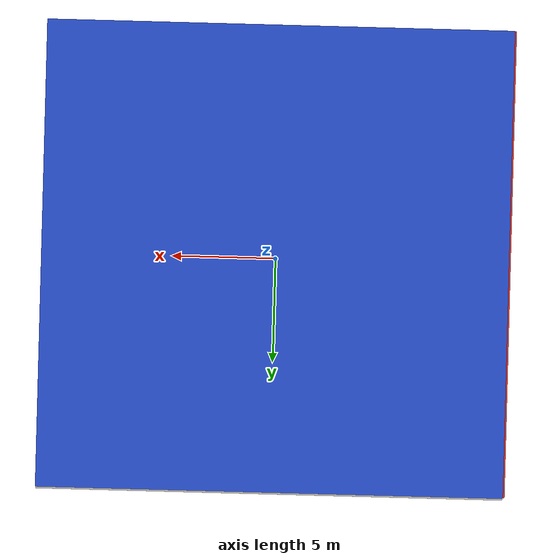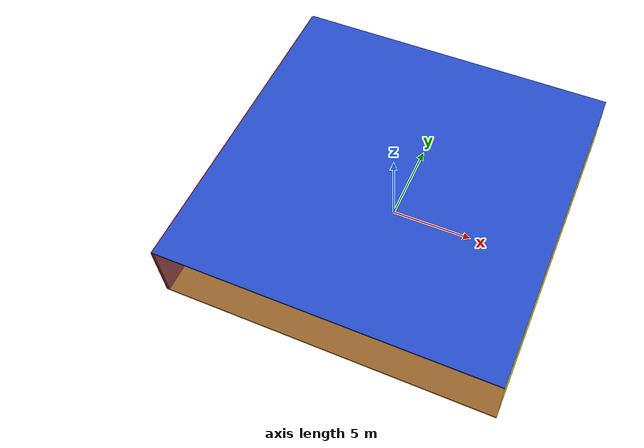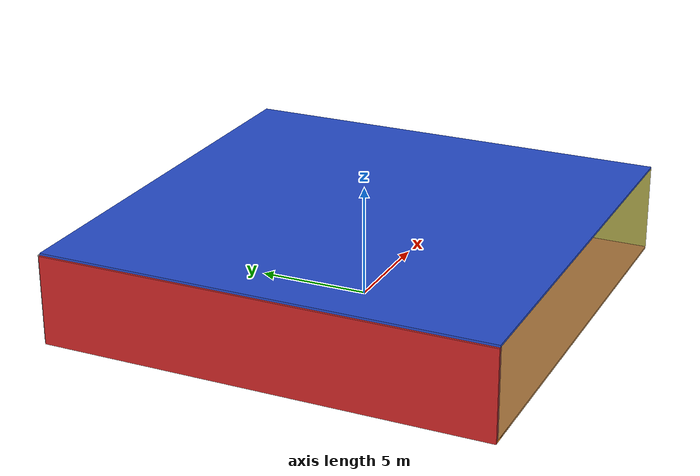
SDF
<sdf version="1.4">
 <world name="default">
  <physics type="ode">
   <max_step_size>0.001</max_step_size>
   <real_time_factor>1</real_time_factor>
   <real_time_update_rate>1000</real_time_update_rate>
   <gravity>0 0 -9.8</gravity>
  </physics>
  <scene><ambient>0.4 0.4 0.4 1</ambient><background>0.7 0.7 0.7 1</background><shadows>1</shadows></scene>
  <model name="Surrounding">
   <static>1</static>
   <link name="Ceiling">
    <collision name="Ceiling_Collision"><geometry><box><size>20 20 0.1</size></box></geometry></collision>
    <visual name="Ceiling_Visual">
     <geometry><box><size>20 20 0.1</size></box></geometry>
     <material>
      <script><uri>file://media/materials/scripts/gazebo.material</uri><name>Gazebo/BlueGlow</name></script>
     </material>
    </visual>
    <pose>0 0 4.05 0 0 0</pose>
   </link>
   <link name="Wall_South">
    <collision name="Wall_South_Collision">
     <geometry><box><size>20 0 4</size></box></geometry>
     <pose>0 0 2 0 -0 0</pose>
    </collision>
    <visual name="Wall_South_Visual">
     <pose>0 0 2 0 -0 0</pose>
     <geometry><box><size>20 0 4</size></box></geometry>
     <material>
      <script><uri>file://media/materials/scripts/gazebo.material</uri><name>Gazebo/GreyTransparent</name></script>
     </material>
    </visual>
    <velocity_decay><linear>0</linear><angular>0</angular></velocity_decay>
    <pose>0 -10 0 0 -0 0</pose>
   </link>
   <link name="Wall_East">
    <collision name="Wall_21_Collision">
     <geometry><box><size>20 0 4</size></box></geometry>
     <pose>0 0 2 0 -0 0</pose>
    </collision>
    <visual name="Wall_21_Visual">
     <pose>0 0 2 0 -0 0</pose>
     <geometry><box><size>20 0 4</size></box></geometry>
     <material>
      <script><uri>file://media/materials/scripts/gazebo.material</uri><name>Gazebo/YellowGlow</name></script>
     </material>
    </visual>
    <velocity_decay><linear>0</linear><angular>0</angular></velocity_decay>
    <pose>10 0 0 0 -0 1.5708</pose>
   </link>
   <link name="Wall_North">
    <collision name="Wall_22_Collision">
     <geometry><box><size>20 0.2 4</size></box></geometry>
     <pose>0 0 2 0 -0 0</pose>
    </collision>
    <visual name="Wall_22_Visual">
     <pose>0 0 2 0 -0 0</pose>
     <geometry><box><size>20 0.2 4</size></box></geometry>
     <material>
      <script><uri>file://media/materials/scripts/gazebo.material</uri><name>Gazebo/Pioneer2Body</name></script>
     </material>
    </visual>
    <velocity_decay><linear>0</linear><angular>0</angular></velocity_decay>
    <pose>0 10 0 0 -0 0</pose>
   </link>
   <link name="Wall_West">
    <collision name="Wall_23_Collision">
     <geometry><box><size>20 0.2 4</size></box></geometry>
     <pose>0 0 2 0 -0 0</pose>
    </collision>
    <visual name="Wall_23_Visual">
     <pose>0 0 2 0 -0 0</pose>
     <geometry><box><size>20 0.2 4</size></box></geometry>
     <material>
      <script><uri>file://media/materials/scripts/gazebo.material</uri><name>Gazebo/RedBright</name></script>
     </material>
    </visual>
    <velocity_decay><linear>0</linear><angular>0</angular></velocity_decay>
    <pose>-10 0 0 0 0 -1.5708</pose>
   </link>
   <link name="Ground_link">
    <collision name="collision">
     <pose>0 0 .05 0 -0 0</pose>
     <geometry><box><size>20 20 0.1</size></box></geometry>
    </collision>
    <visual name="visual">
     <pose>0 0 .05 0 -0 0</pose>
     <geometry><box><size>20 20 0.1</size></box></geometry>
     <material>
      <script><uri>file://media/materials/scripts/gazebo.material</uri><name>Gazebo/Orange</name></script>
     </material>
    </visual>
   </link>
   <static>1</static>
  </model>
  <spherical_coordinates>
   <surface_model>EARTH_WGS84</surface_model>
   <latitude_deg>0</latitude_deg>
   <longitude_deg>0</longitude_deg>
   <elevation>0</elevation>
   <heading_deg>0</heading_deg>
  </spherical_coordinates>
  <light name="lightball_0" type="diffuse">
   <diffuse>0.8 0.8 0.8 1</diffuse>
   <specular>0.2 0.2 0.2 1</specular>
   <attenuation>
    <range>100</range>
    <constant>0.7</constant>
    <linear>0.01</linear>
    <quadratic>0.001</quadratic>
   </attenuation>
   <direction>-0.5 0.1 -0.9</direction>
   <pose>6.49183233594 -8.10515857741 3.21226117183 0 0 0</pose>
  </light>
  <light name="lightball_1" type="diffuse">
   <diffuse>0.8 0.8 0.8 1</diffuse>
   <specular>0.2 0.2 0.2 1</specular>
   <attenuation>
    <range>100</range>
    <constant>0.7</constant>
    <linear>0.01</linear>
    <quadratic>0.001</quadratic>
   </attenuation>
   <direction>-0.5 0.1 -0.9</direction>
   <pose>-8.06467992177 7.3741761694 0.501536536436 0 0 0</pose>
  </light>
  <light name="lightball_2" type="diffuse">
   <diffuse>0.8 0.8 0.8 1</diffuse>
   <specular>0.2 0.2 0.2 1</specular>
   <attenuation>
    <range>100</range>
    <constant>0.7</constant>
    <linear>0.01</linear>
    <quadratic>0.001</quadratic>
   </attenuation>
   <direction>-0.5 0.1 -0.9</direction>
   <pose>-2.36799231135 1.91075165407 3.84675826166 0 0 0</pose>
  </light>
  <light name="lightball_3" type="diffuse">
   <diffuse>0.8 0.8 0.8 1</diffuse>
   <specular>0.2 0.2 0.2 1</specular>
   <attenuation>
    <range>100</range>
    <constant>0.7</constant>
    <linear>0.01</linear>
    <quadratic>0.001</quadratic>
   </attenuation>
   <direction>-0.5 0.1 -0.9</direction>
   <pose>5.51081144309 -5.33262644677 0.959905898849 0 0 0</pose>
  </light>
  <light name="lightball_4" type="diffuse">
   <diffuse>0.8 0.8 0.8 1</diffuse>
   <specular>0.2 0.2 0.2 1</specular>
   <attenuation>
    <range>100</range>
    <constant>0.7</constant>
    <linear>0.01</linear>
    <quadratic>0.001</quadratic>
   </attenuation>
   <direction>-0.5 0.1 -0.9</direction>
   <pose>1.3317446613 -9.17133861562 3.25622228321 0 0 0</pose>
  </light>
  <include>
   <uri>model://textured_shapes</uri>
   <pose>-4.11293214934 1.21651477298 0 0 0 2.45186499906</pose>
  </include>
  <include>
   <uri>model://construction_cone</uri>
   <pose>-0.324490691507 -4.89448141622 0 0 0 1.22722082505</pose>
  </include>
 </world>
</sdf>

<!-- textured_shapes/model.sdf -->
<sdf version="1.6">
  <model name="textured_shapes">
    <pose>0 0 0.5 0 0 0</pose>
    <link name="box">
      <pose>0 -1.5 0 0 0 0</pose>
      <collision name="collision">
        <geometry>
          <box>
            <size>1 1 1</size>
          </box>
        </geometry>
      </collision>
      <visual name="visual">
        <geometry>
          <box>
            <size>1 1 1</size>
          </box>
        </geometry>
        <material>
          <script>
            <uri>model://../model_source/models/textured_shapes/materials/scripts</uri>
            <uri>model://../model_source/models/textured_shapes/materials/textures</uri>
            <name>TexturedShape/Squares</name>
          </script>
        </material>
      </visual>
    </link>
    <link name="sphere">
      <collision name="collision">
        <geometry>
          <sphere>
            <radius>0.5</radius>
          </sphere>
        </geometry>
      </collision>
      <visual name="visual">
        <geometry>
          <sphere>
            <radius>0.5</radius>
          </sphere>
        </geometry>
        <material>
          <script>
            <uri>model://../model_source/models/textured_shapes/materials/scripts</uri>
            <uri>model://../model_source/models/textured_shapes/materials/textures</uri>
            <name>TexturedShape/Squares</name>
          </script>
        </material>
      </visual>
    </link>
    <link name="cylinder">
      <pose>0 1.5 0 0 0 0</pose>
      <collision name="collision">
        <geometry>
          <cylinder>
            <radius>0.5</radius>
            <length>1</length>
          </cylinder>
        </geometry>
      </collision>
      <visual name="visual">
        <geometry>
          <cylinder>
            <radius>0.5</radius>
            <length>1</length>
          </cylinder>
        </geometry>
        <material>
          <script>
            <uri>model://../model_source/models/textured_shapes/materials/scripts</uri>
            <uri>model://../model_source/models/textured_shapes/materials/textures</uri>
            <name>TexturedShape/Squares</name>
          </script>
        </material>
      </visual>
    </link>
  </model>
</sdf>

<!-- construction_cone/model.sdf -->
<sdf version="1.5">
  <model name="Construction Cone">
    <link name="link">
      <collision name="collision">
        <geometry>
          <mesh>
            <scale>10 10 10</scale>
            <uri>file://isr-testbed/construction_cone/meshes/construction_cone.dae</uri>
          </mesh>
        </geometry>
      </collision>
      <visual name="visual">
        <geometry>
          <mesh>
            <scale>10 10 10</scale>
            <uri>file://isr-testbed/construction_cone/meshes/construction_cone.dae</uri>
          </mesh>
        </geometry>
      </visual>
    </link>
  </model>
</sdf>
